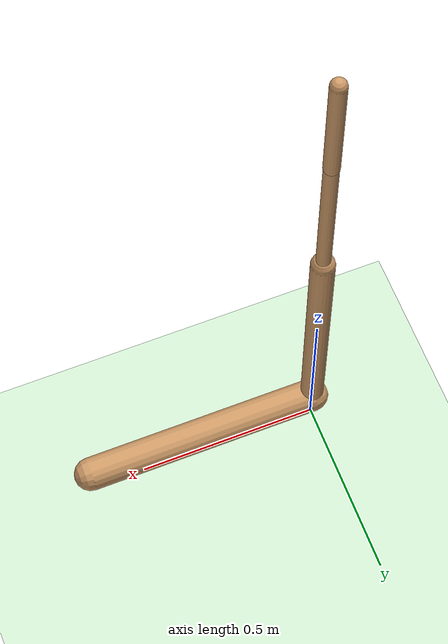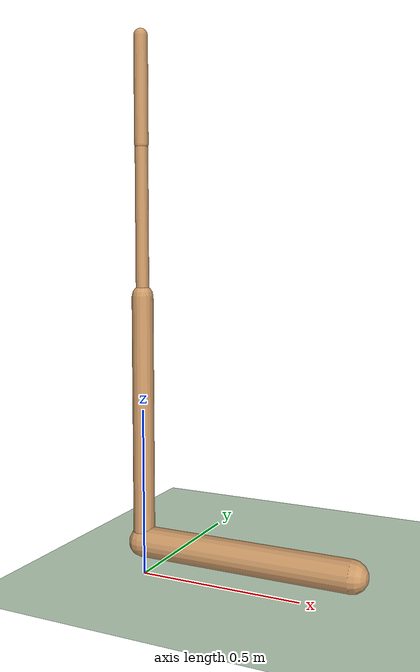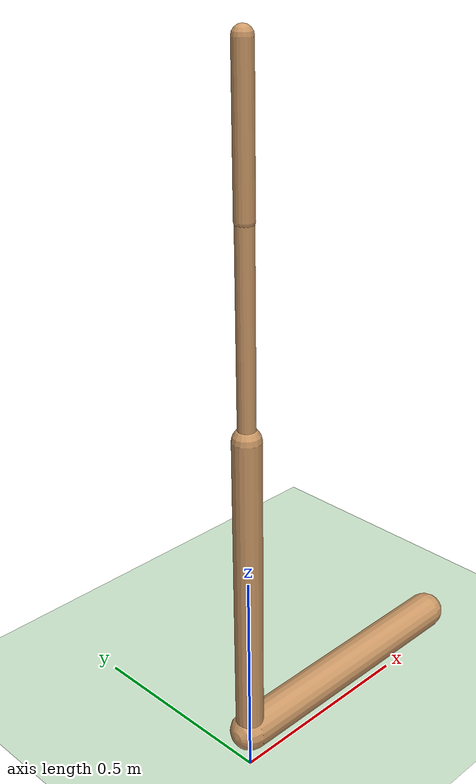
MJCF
<mujoco model="walker2d">
  <compiler angle="degree" inertiafromgeom="true" />
  <default>
    <joint armature="0.01" damping=".1" limited="true" />
    <geom conaffinity="0" condim="3" contype="1" density="1000" friction=".7 .1 .1" rgba="0.8 0.6 .4 1" />
  </default>
  <option integrator="RK4" timestep="0.002" />
  <worldbody>
    <light cutoff="100" diffuse="1 1 1" dir="-0 0 -1.3" directional="true" exponent="1" pos="0 0 1.3" specular=".1 .1 .1" />
    <geom conaffinity="1" condim="3" name="floor" pos="0 0 0" rgba="0.8 0.9 0.8 1" size="40 40 40" type="plane" material="MatPlane" />
    <body name="torso" pos="0 0 1.4451936841011048">
      <camera name="track" mode="trackcom" pos="0 -5 -1.25" xyaxes="1 0 0 0 0 1" />
      <joint armature="0" axis="1 0 0" damping="0" limited="false" name="rootx" pos="0 0 -1.25" stiffness="0" type="slide" />
      <joint armature="0" axis="0 0 1" damping="0" limited="false" name="rootz" pos="0 0 -1.25" ref="1.25" stiffness="0" type="slide" />
      <joint armature="0" axis="0 1 0" damping="0" limited="false" name="rooty" pos="0 0 0" stiffness="0" type="hinge" />
      <geom friction="0.9" name="torso_geom" size="0.020695991814136505 0.15752464532852173" type="capsule" />
      <body name="thigh" pos="0 0 -0.15752464532852173">
        <joint axis="0 -1 0" name="thigh_joint" pos="0 0 0" range="-150 0" type="hinge" />
        <site name="torso_thigh_site" pos="0 0 0" size="0.01" type="sphere" rgba="1 0 0 0.5" />
        <geom friction="0.9" pos="0 0 -0.22227871417999268" name="thigh_geom" size="0.019473183900117874 0.22227871417999268" type="capsule" />
        <body name="leg" pos="0 0 -0.8161132335662842">
          <joint axis="0 -1 0" name="leg_joint" pos="0 0 0.37155580520629883" range="-150 0" type="hinge" />
          <site name="thigh_leg_site" pos="0 0 0.25" size="0.01" type="sphere" rgba="1 0 0 0.5" />
          <geom friction="0.9" name="leg_geom" size="0.031934741884469986 0.37155580520629883" type="capsule" />
          <body name="foot" pos="0.6509799361228943 0 -0.4715558052062988">
            <joint axis="0 -1 0" name="foot_joint" pos="-0.6509799361228943 0 0.1" range="-45 45" type="hinge" />
            <site name="leg_foot_site" pos="-0.2 0 0.1" size="0.01" type="sphere" rgba="1 0 0 0.5" />
            <geom friction="0.9" pos="-0.32548996806144714 0 0.1" quat="0.70710678118654757 0 -0.70710678118654746 0" name="foot_geom" size="0.045962367206811905 0.32548996806144714" type="capsule" />
          </body>
        </body>
      </body>

      <body name="thigh_left" pos="0 0 -0.15752464532852173">
        <joint axis="0 -1 0" name="thigh_left_joint" pos="0 0 0" range="-150 0" type="hinge" />
        <site name="torso_thigh_left_site" pos="0 0 0" size="0.01" type="sphere" rgba="1 0 0 0.5" />
        <geom friction="0.9" name="thigh_left_geom" rgba=".7 .3 .6 1" size="0.019473183900117874 0.22227871417999268" pos="0 0 -0.22227871417999268" type="capsule" />
        <body name="leg_left" pos="0 0 -0.8161132335662842">
          <joint axis="0 -1 0" name="leg_left_joint" pos="0 0 0.37155580520629883" range="-150 0" type="hinge" />
          <site name="thigh_leg_left_site" pos="0 0 0.25" size="0.01" type="sphere" rgba="1 0 0 0.5" />
          <geom friction="0.9" name="leg_left_geom" rgba=".7 .3 .6 1" size="0.031934741884469986 0.37155580520629883" type="capsule" />
          <body name="foot_left" pos="0.6509799361228943 0 -0.4715558052062988">
            <joint axis="0 -1 0" name="foot_left_joint" pos="-0.6509799361228943 0 0.1" range="-45 45" type="hinge" />
            <site name="leg_foot_left_site" pos="-0.2 0 0.1" size="0.01" type="sphere" rgba="1 0 0 0.5" />
            <geom friction="1.9" name="foot_left_geom" rgba=".7 .3 .6 1" size="0.045962367206811905 0.32548996806144714" pos="-0.32548996806144714 0 0.1" type="capsule" quat="0.70710678118654757 0 -0.70710678118654746 0" />
          </body>
        </body>
      </body>
    </body>
  </worldbody>
  <actuator>

    <motor ctrllimited="true" ctrlrange="-1.0 1.0" gear="14.984742333944173" joint="thigh_joint" />
    <motor ctrllimited="true" ctrlrange="-1.0 1.0" gear="94.73072920511886" joint="leg_joint" />
    <motor ctrllimited="true" ctrlrange="-1.0 1.0" gear="191.00286569268903" joint="foot_joint" />
    <motor ctrllimited="true" ctrlrange="-1.0 1.0" gear="14.984742333944173" joint="thigh_left_joint" />
    <motor ctrllimited="true" ctrlrange="-1.0 1.0" gear="94.73072920511886" joint="leg_left_joint" />
    <motor ctrllimited="true" ctrlrange="-1.0 1.0" gear="191.00286569268903" joint="foot_left_joint" />

  </actuator>
    <asset>
        <texture type="skybox" builtin="gradient" rgb1=".4 .5 .6" rgb2="0 0 0" width="100" height="100" />
        <texture builtin="flat" height="1278" mark="cross" markrgb="1 1 1" name="texgeom" random="0.01" rgb1="0.8 0.6 0.4" rgb2="0.8 0.6 0.4" type="cube" width="127" />
        <texture builtin="checker" height="100" name="texplane" rgb1="0 0 0" rgb2="0.8 0.8 0.8" type="2d" width="100" />
        <material name="MatPlane" reflectance="0.5" shininess="1" specular="1" texrepeat="60 60" texture="texplane" />
        <material name="geom" texture="texgeom" texuniform="true" />
    </asset>

  <sensor>
    <force site="torso_thigh_site" name="torso_thigh_sensor" />
    <force site="thigh_leg_site" name="thigh_leg_sensor" />
    <force site="leg_foot_site" name="leg_foot_sensor" />
    <force site="torso_thigh_left_site" name="torso_thigh_left_sensor" />
    <force site="thigh_leg_left_site" name="thigh_leg_left_sensor" />
    <force site="leg_foot_left_site" name="leg_foot_left_sensor" />
  </sensor>
</mujoco>
